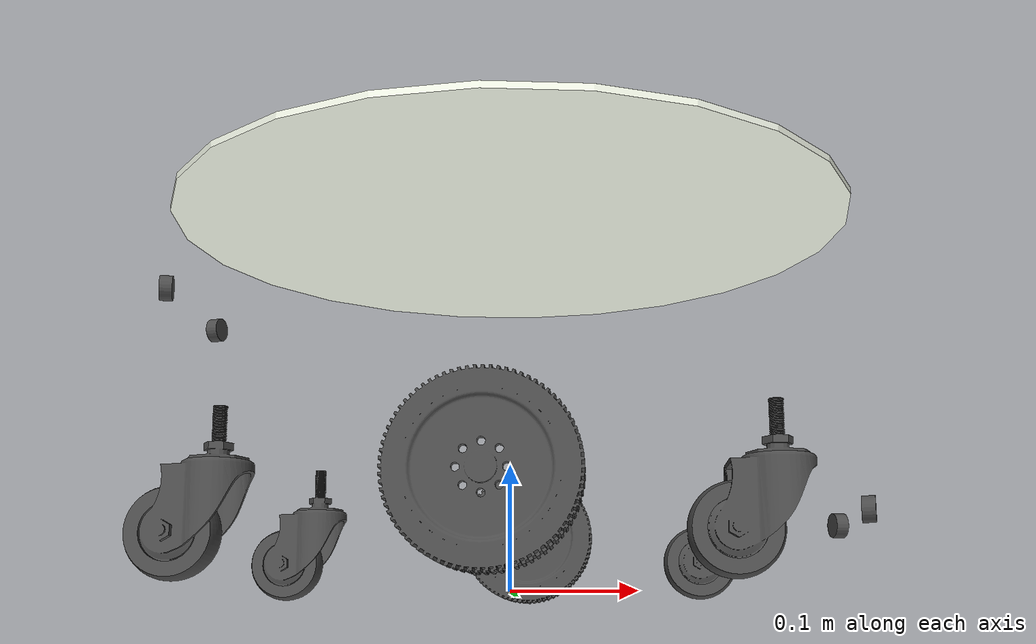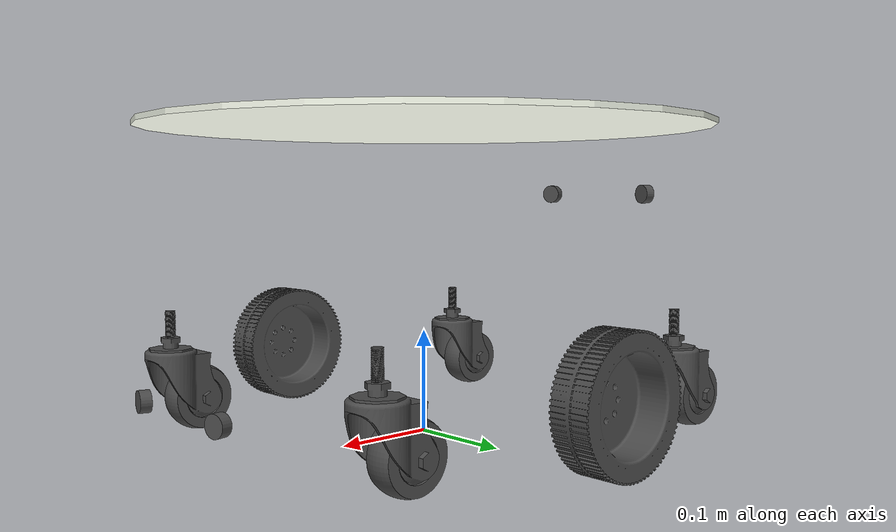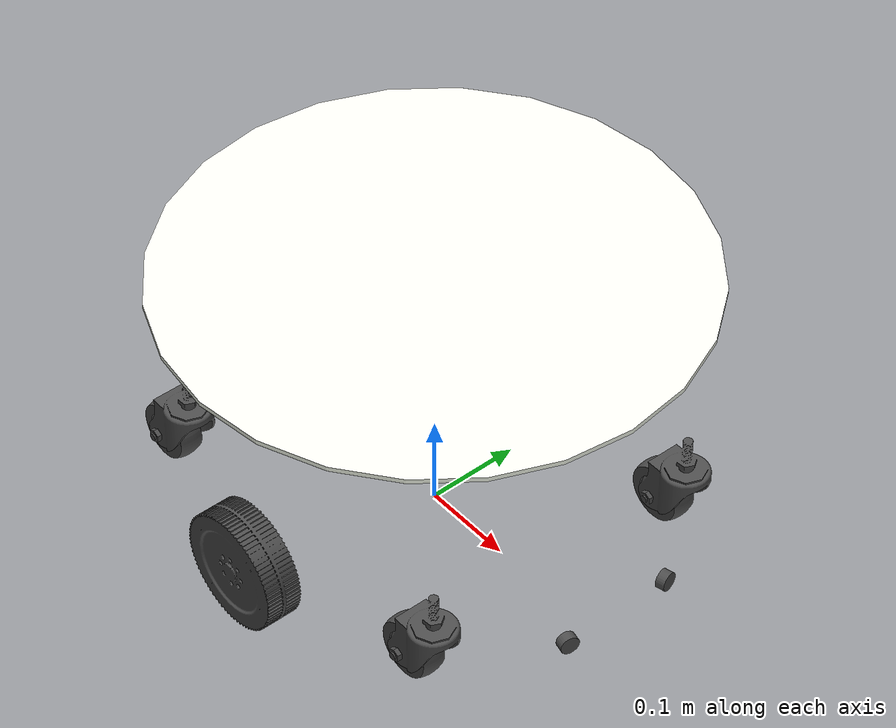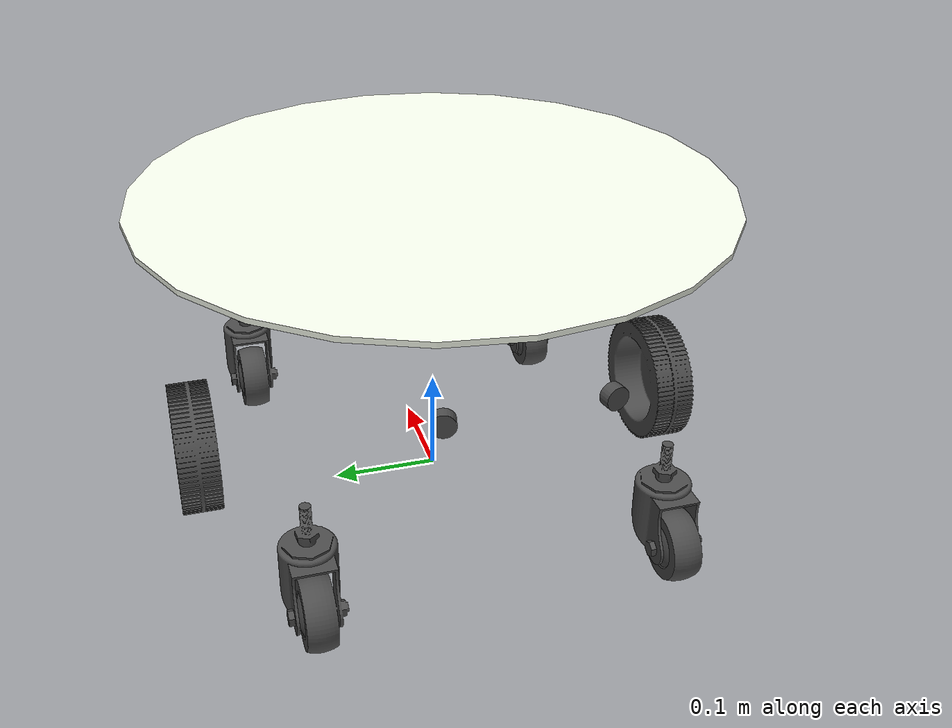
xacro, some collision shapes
<?xml version = "1.0"?>
<robot name = "caster_xacro" xmlns:xacro = "http://www.ros.org/wiki/xacro">

  <!-- Include accessories -->
  <xacro:include filename = "$(find caster_description)/urdf/common_properties.xacro" />
  <xacro:include filename = "$(find caster_description)/urdf/caster_v2.urdf.xacro" />

</robot>

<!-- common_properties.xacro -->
<robot name="xacro_properties" xmlns:xacro="http://www.ros.org/wiki/xacro">

  <!-- Init colour -->
  <material name="black">
      <color rgba="0.0 0.0 0.0 1.0"/>
  </material>

  <material name="dark">
    <color rgba="0.3 0.3 0.3 1.0"/>
  </material>

  <material name="blue">
    <color rgba="0.0 0.0 0.8 1.0"/>
  </material>

  <material name="green">
    <color rgba="0.0 0.8 0.0 1.0"/>
  </material>

  <material name="grey">
    <color rgba="0.5 0.5 0.5 1.0"/>
  </material>

  <material name="orange">
    <color rgba="${255/255} ${108/255} ${10/255} 1.0"/>
  </material>

  <material name="brown">
    <color rgba="${222/255} ${207/255} ${195/255} 1.0"/>
  </material>

  <material name="red">
    <color rgba="0.8 0.0 0.0 1.0"/>
  </material>

  <material name = "ivory_white">
    <color rgba = "0.98 1.0 0.94 1.0" />
  </material>

  <material name="white">
    <color rgba="1.0 1.0 1.0 1.0"/>
  </material>
</robot>

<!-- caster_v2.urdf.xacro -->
<robot name="caster_robot" xmlns:xacro="http://www.ros.org/wiki/xacro" description="iqr caster robot">
  <xacro:property name="M_PI" value="3.1415926535897931" />
	<xacro:property name="deg_to_rad" value="0.017453293" />
  <xacro:include filename = "$(find caster_description)/urdf/iqr_caster.gazebo.xacro" />

  <!-- support_wheel unit -->
  <xacro:macro name="support_wheel" params="parent location *origin">
    <link name="support_wheel_${location}_body_link">
      <visual>
        <origin xyz="0 0 0" rpy="0 0 0" />
        <geometry>
          <mesh filename="package://caster_description/mesh/v2/support_wheel_body.stl" />
        </geometry>
        <material name="">
          <color rgba="0.3 0.3 0.3 1.0" />
        </material>
      </visual>
      <collision>
        <origin xyz="0 0 0" rpy="0 0 0" />
        <geometry>
          <mesh filename="package://caster_description/mesh/v2/support_wheel_body.stl" />
        </geometry>
      </collision>
      <inertial>
        <origin xyz="-0.01 0 -0.02" rpy="${24 * deg_to_rad} 0 ${M_PI/2}"/>
        <mass value="0.25" />
        <inertia ixx="2.4166657e-4" ixy="0.0" ixz="-0.0"
                 iyy="2.4166657e-4" iyz="0.0"
                 izz="6.66664e-5" />
      </inertial>
    </link>

    <link name="support_wheel_${location}_link">
      <visual>
        <origin xyz="0 0 0" rpy="0 0 0" />
        <geometry>
          <mesh filename="package://caster_description/mesh/v2/support_wheel_roller.stl" />
        </geometry>
        <material name="">
          <color rgba="0.3 0.3 0.3 1.0" />
        </material>
      </visual>
      <collision>
        <origin xyz="0 0 0" rpy="${M_PI/2} 0 0" />
        <geometry>
          <cylinder length="0.01" radius="0.0325" />
        </geometry>
      </collision>

      <inertial>
        <origin xyz="0 0 0" rpy="${M_PI/2} 0 0"/>
        <mass value="0.27" />
        <inertia ixx="7.35468456e-5" ixy="0.0" ixz="0.0"
                 iyy="7.35468456e-5" iyz="0.0"
                 izz="1.4259375e-4" />
      </inertial>
    </link>

    <joint name="support_wheel_${location}_body_joint" type="fixed">
      <xacro:insert_block name="origin" />
      <parent link="${parent}" />
      <child link="support_wheel_${location}_body_link" />
      <axis xyz="0 0 1" />
      <dynamics damping="0.01" friction="0.0"/>
    </joint>

    <joint name="support_wheel_${location}_joint" type="fixed">
      <origin xyz="-0.0292 0 -0.0615" rpy="0 0 0" />
      <parent link="support_wheel_${location}_body_link" />
      <child link="support_wheel_${location}_link" />
      <axis xyz="0 1 0" />
    </joint>
  </xacro:macro>

  <!-- drive_wheel unit -->
  <xacro:macro name="drive_wheel" params="parent location invert *origin">
    <link name="drive_wheel_${location}_link">
      <visual>
        <origin xyz="0 0 0" rpy="0 0 ${invert*M_PI}" />
        <geometry>
          <mesh filename="package://caster_description/mesh/v2/drive_wheel_${location}.stl" />
        </geometry>
        <material name="">
          <color rgba="0.30 0.30 0.30 1" />
        </material>
      </visual>

      <collision>
        <origin xyz="0 0 0" rpy="${M_PI/2} 0 0" />
        <geometry>
          <cylinder length="0.035" radius="0.0625" />
        </geometry>
      </collision>
      <inertial>
        <origin xyz="0 0 0" rpy="${M_PI/2} 0 0"/>
        <mass value="0.92" />
        <inertia ixx="0.0014" ixy="0.0" ixz="-0.0"
                 iyy="0.0014" iyz="0.0"
                 izz="0.0026" />
      </inertial>
    </link>

    <joint name="drive_wheel_${location}_joint" type="continuous">
      <xacro:insert_block name="origin" />
      <parent link="${parent}" />
      <child link="drive_wheel_${location}_link" />
      <axis xyz="0 1 0" rpy="0 0 0"/>
    </joint>

    <transmission name="tran_${location}">
      <type>transmission_interface/SimpleTransmission</type>
      <joint name="drive_wheel_${location}_joint">
        <hardwareInterface>hardware_interface/VelocityJointInterface</hardwareInterface>
      </joint>
      <actuator name="motor_${location}">
        <hardwareInterface>hardware_interface/VelocityJointInterface</hardwareInterface>
        <mechanicalReduction>1</mechanicalReduction>
      </actuator>
    </transmission>
  </xacro:macro>

  <!-- ULT unit-->
  <xacro:macro name="ultrasonic" params="parent location *origin">
    <link name="ultrasonic_${location}_link">
      <visual>
        <origin xyz="0 0 0" rpy="0 ${M_PI/2} 0" />
        <geometry>
          <cylinder length="0.01" radius="0.01" />
        </geometry>
        <material name="">
          <color rgba="0.3 0.3 0.3 1.0" />
        </material>
      </visual>
    </link>

    <joint name="ultrasonic_${location}_joint" type="fixed">
      <xacro:insert_block name="origin" />
      <parent link="${parent}" />
      <child link="ultrasonic_${location}_link" />
    </joint>
  </xacro:macro>

  <!-- base footprint -->
  <link name="base_footprint">
    <origin xyz="0 0 0" rpy="0 0 0" />
  </link>
  <!-- base link -->
  <link name="base_link">
    <visual>
      <origin xyz="0 0 0" rpy="0 0 0" />
      <geometry>
        <mesh filename="package://caster_description/mesh/v2/caster_base.stl" />
      </geometry>
      <material name="">
        <color rgba="0.98 1.0 0.94 1.0" />
      </material>
    </visual>
    <collision>
      <origin xyz="0 0 0.265" rpy="0 0 0" />
      <geometry>
         <cylinder length="0.005" radius="0.275"/>
      </geometry>
    </collision>
    <inertial>
      <origin xyz="-0.02 0 0.11" />
      <mass value="45.16" />
      <inertia ixx="0.94" ixy="0.0" ixz="0.0"
           iyy="0.99" iyz="0.0"
           izz="1.35" />
    </inertial>
  </link>

  <joint name="base_link_joint" type="fixed">
    <origin xyz="0 0 0.034" rpy="0 0 0" />
    <parent link="base_footprint" />
    <child link="base_link" />
  </joint>

  <!-- IMU link -->
  <link name="imu_link" />

  <joint name="imu_link_joint" type="fixed">
    <origin xyz="0 0 0" rpy="0 0 0" />
    <parent link="base_link" />
    <child link="imu_link" />
  </joint>

  <!-- Laser link -->
  <link name="laser_link">
  </link>
  <joint name="laser_link_joint" type="fixed">
    <origin xyz="0.24 0 0.1334" rpy="0 0 0" />
    <parent link="base_link" />
    <child link="laser_link" />
  </joint>

  <!-- Laser link 2 (rplidar) -->
  <link name="laser_link2" >
  </link>
  <joint name="laser_link_joint2" type="fixed">
    <origin xyz="0 0 0.2398" rpy="0 0 ${M_PI}" />
    <parent link="base_link" />
    <child link="laser_link2" />
  </joint>

  <!-- Drive wheel link -->
  <xacro:drive_wheel parent="base_link" invert="0" location="left">
    <origin xyz="0 0.236 0.0285" rpy="0 0 0" />
  </xacro:drive_wheel>
  <xacro:drive_wheel parent="base_link" invert="1" location="right">
    <origin xyz="0 -0.236 0.0285" rpy="0 0 0" />
  </xacro:drive_wheel>

  <!-- Support wheel link -->
  <xacro:support_wheel parent="base_link" location="front_left">
    <origin xyz="0.19 0.16 0.06" rpy="0 0 0" />
  </xacro:support_wheel>
  <xacro:support_wheel parent="base_link" location="front_right">
    <origin xyz="0.19 -0.16 0.06" rpy="0 0 0" />
  </xacro:support_wheel>
  <xacro:support_wheel parent="base_link" location="rear_left">
    <origin xyz="-0.19 0.16 0.06" rpy="0 0 0" />
  </xacro:support_wheel>
  <xacro:support_wheel parent="base_link" location="rear_right">
    <origin xyz="-0.19 -0.16 0.06" rpy="0 0 0" />
  </xacro:support_wheel>

  <!-- Ultrasonic link-->
  <xacro:ultrasonic parent="base_link" location="front_left">
    <origin xyz="0.26795 0.06186 0.022" rpy="0 0 0.2268" />
  </xacro:ultrasonic>
  <xacro:ultrasonic parent="base_link" location="front_right">
    <origin xyz="0.26795 -0.06186 0.022" rpy="0 0 -0.2268" />
  </xacro:ultrasonic>
  <xacro:ultrasonic parent="base_link" location="rear_left">
    <origin xyz="-0.26683 0.06653 0.2" rpy="0 0 2.8972" />
  </xacro:ultrasonic>
  <xacro:ultrasonic parent="base_link" location="rear_right">
    <origin xyz="-0.26683 -0.06653 0.2" rpy="0 0 -2.8972" />
  </xacro:ultrasonic>
</robot>
